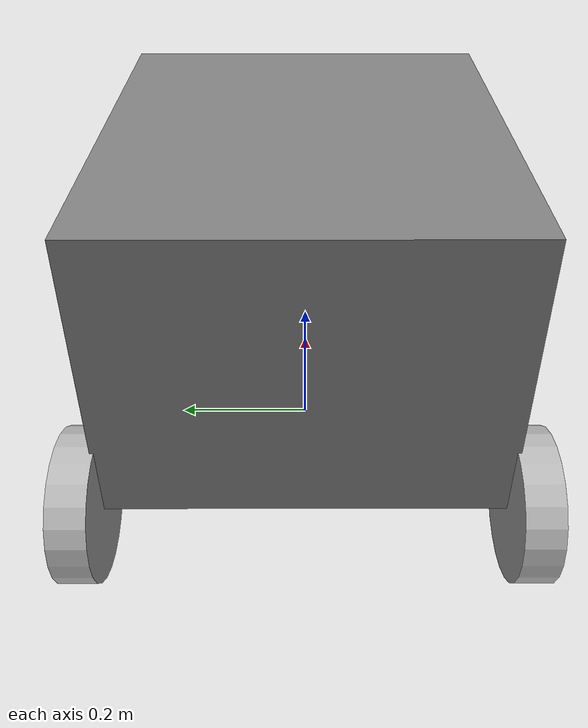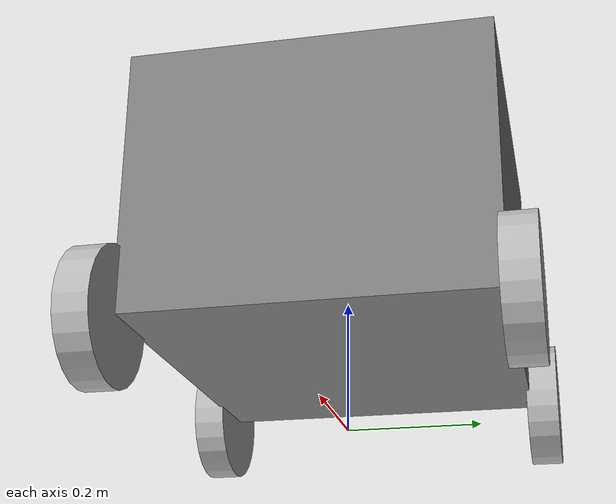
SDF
<?xml version="1.0"?>

<sdf version="1.9">
  <model name="my_robot">

    <static>false</static>

    <link name="base_link">

      <pose>0 0 0.3 0 0 0</pose>

      <inertial>

        <mass>15.0</mass>

        <inertia>

          <ixx>0.5</ixx>
          <iyy>0.5</iyy>
          <izz>0.5</izz>

          <ixy>0</ixy>
          <ixz>0</ixz>
          <iyz>0</iyz>

        </inertia>

      </inertial>

      <collision name="collision">

        <geometry>

          <box>
            <size>0.6 0.53 0.4</size>
          </box>

        </geometry>

      </collision>

      <visual name="visual">

        <geometry>

          <box>
            <size>0.6 0.53 0.4</size>
          </box>

        </geometry>

        <material>

          <ambient>0.5 0.5 0.5 1</ambient>

          <diffuse>0.5 0.5 0.5 1</diffuse>

        </material>

      </visual>

    </link>
    <!-- ================= WHEELS ================= -->

<link name="front_left_wheel">
  <pose>0.29 0.285 0.1 1.5708 0 0</pose>

  <inertial>
    <mass>0.8</mass>
    <inertia>
      <ixx>0.01</ixx>
      <iyy>0.01</iyy>
      <izz>0.01</izz>
      <ixy>0</ixy>
      <ixz>0</ixz>
      <iyz>0</iyz>
    </inertia>
  </inertial>

  <collision name="collision">
    <geometry>
      <cylinder>
        <radius>0.1</radius>
        <length>0.05</length>
      </cylinder>
    </geometry>
  </collision>

  <visual name="visual">
    <geometry>
      <cylinder>
        <radius>0.1</radius>
        <length>0.05</length>
      </cylinder>
    </geometry>
  </visual>
</link>

<link name="front_right_wheel">
  <pose>0.29 -0.285 0.1 1.5708 0 0</pose>

  <inertial>
    <mass>0.8</mass>
    <inertia>
      <ixx>0.01</ixx>
      <iyy>0.01</iyy>
      <izz>0.01</izz>
      <ixy>0</ixy>
      <ixz>0</ixz>
      <iyz>0</iyz>
    </inertia>
  </inertial>

  <collision name="collision">
    <geometry>
      <cylinder>
        <radius>0.1</radius>
        <length>0.05</length>
      </cylinder>
    </geometry>
  </collision>

  <visual name="visual">
    <geometry>
      <cylinder>
        <radius>0.1</radius>
        <length>0.05</length>
      </cylinder>
    </geometry>
  </visual>
</link>

<link name="rear_left_wheel">
  <pose>-0.29 0.285 0.1 1.5708 0 0</pose>

  <inertial>
    <mass>0.8</mass>
    <inertia>
      <ixx>0.01</ixx>
      <iyy>0.01</iyy>
      <izz>0.01</izz>
      <ixy>0</ixy>
      <ixz>0</ixz>
      <iyz>0</iyz>
    </inertia>
  </inertial>

  <collision name="collision">
    <geometry>
      <cylinder>
        <radius>0.1</radius>
        <length>0.05</length>
      </cylinder>
    </geometry>
  </collision>

  <visual name="visual">
    <geometry>
      <cylinder>
        <radius>0.1</radius>
        <length>0.05</length>
      </cylinder>
    </geometry>
  </visual>
</link>

<link name="rear_right_wheel">
  <pose>-0.29 -0.285 0.1 1.5708 0 0</pose>

  <inertial>
    <mass>0.8</mass>
    <inertia>
      <ixx>0.01</ixx>
      <iyy>0.01</iyy>
      <izz>0.01</izz>
      <ixy>0</ixy>
      <ixz>0</ixz>
      <iyz>0</iyz>
    </inertia>
  </inertial>

  <collision name="collision">
    <geometry>
      <cylinder>
        <radius>0.1</radius>
        <length>0.05</length>
      </cylinder>
    </geometry>
  </collision>

  <visual name="visual">
    <geometry>
      <cylinder>
        <radius>0.1</radius>
        <length>0.05</length>
      </cylinder>
    </geometry>
  </visual>
</link>
      <!-- ================= JOINTS ================= -->

  <joint name="front_left_wheel_joint" type="revolute">

    <parent>base_link</parent>

    <child>front_left_wheel</child>

    <pose>0 0 0 0 0 0</pose>

    <axis>

      <xyz>0 1 0</xyz>

      <limit>
        <lower>-1000000</lower>
        <upper>1000000</upper>
      </limit>

    </axis>

  </joint>

  <joint name="front_right_wheel_joint" type="revolute">

    <parent>base_link</parent>

    <child>front_right_wheel</child>

    <pose>0 0 0 0 0 0</pose>

    <axis>

      <xyz>0 1 0</xyz>

      <limit>
        <lower>-1000000</lower>
        <upper>1000000</upper>
      </limit>

    </axis>

  </joint>

  <joint name="rear_left_wheel_joint" type="revolute">

    <parent>base_link</parent>

    <child>rear_left_wheel</child>

    <pose>0 0 0 0 0 0</pose>

    <axis>

      <xyz>0 1 0</xyz>

      <limit>
        <lower>-1000000</lower>
        <upper>1000000</upper>
      </limit>

    </axis>

  </joint>

  <joint name="rear_right_wheel_joint" type="revolute">

    <parent>base_link</parent>

    <child>rear_right_wheel</child>

    <pose>0 0 0 0 0 0</pose>

    <axis>

      <xyz>0 1 0</xyz>

      <limit>
        <lower>-1000000</lower>
        <upper>1000000</upper>
      </limit>

    </axis>

  </joint>
  </model>

</sdf>
